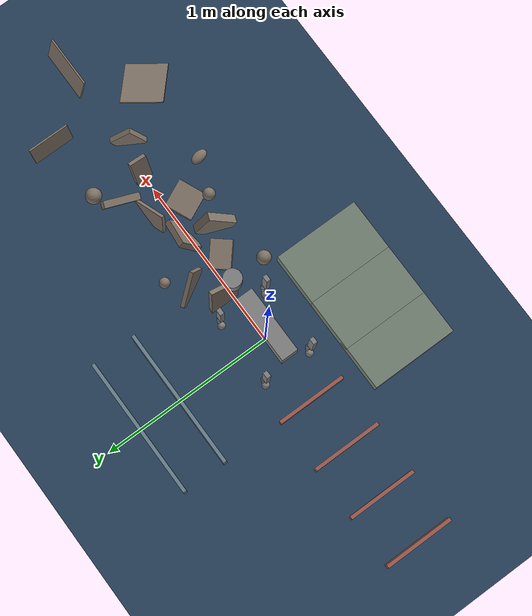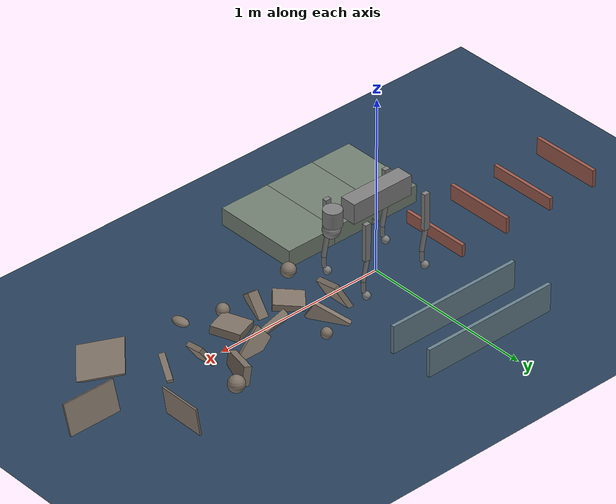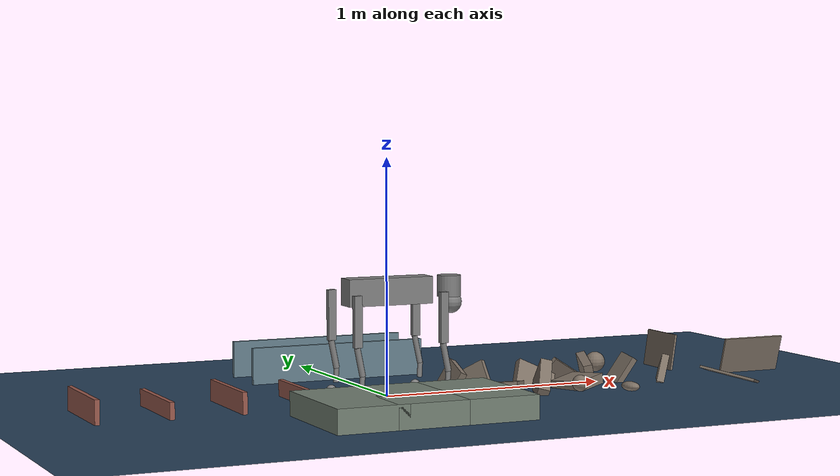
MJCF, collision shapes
<mujoco model="go2 rough terrain">
  <include file="go2.xml"/>

  <statistic center="0.5 0 0.1" extent="2"/>

  <visual>
    <headlight diffuse="0.6 0.6 0.6" ambient="0.3 0.3 0.3" specular="0 0 0"/>
    <rgba haze="0.15 0.25 0.35 1"/>
    <global azimuth="-130" elevation="-20"/>
  </visual>

  <asset>
    <texture type="skybox" builtin="gradient" rgb1="0.3 0.5 0.7" rgb2="0 0 0" width="512" height="3072"/>
    <texture type="2d" name="groundplane" builtin="checker" mark="edge" rgb1="0.2 0.3 0.4" rgb2="0.1 0.2 0.3"
      markrgb="0.8 0.8 0.8" width="300" height="300"/>
    <material name="groundplane" texture="groundplane" texuniform="true" texrepeat="5 5" reflectance="0.2"/>
    <material name="rock" rgba="0.50 0.45 0.40 1" reflectance="0.05"/>
    <material name="obstacle" rgba="0.60 0.35 0.30 1" reflectance="0.1"/>
    <material name="wall" rgba="0.40 0.50 0.55 1" reflectance="0.1"/>
    <material name="gap_plat" rgba="0.45 0.50 0.45 1" reflectance="0.1"/>
  </asset>

  <worldbody>
    <light pos="2 0 3" dir="0 0 -1" directional="true"/>
    <geom name="floor" size="0 0 0.05" type="plane" material="groundplane"/>

    <!-- ═══ Random bumps (uneven terrain zone) ═══ -->
    <!-- Scattered low boxes with slight tilts to simulate rough ground -->
    <geom type="box" size="0.08 0.10 0.015" pos="0.30  0.05 0.015" euler="0 2 5"   material="rock"/>
    <geom type="box" size="0.06 0.08 0.020" pos="0.50 -0.08 0.020" euler="3 0 -4"  material="rock"/>
    <geom type="box" size="0.10 0.06 0.012" pos="0.45  0.15 0.012" euler="-2 1 3"  material="rock"/>
    <geom type="box" size="0.07 0.09 0.018" pos="0.70  0.02 0.018" euler="1 -3 2"  material="rock"/>
    <geom type="box" size="0.09 0.07 0.025" pos="0.65 -0.15 0.025" euler="-1 2 -3" material="rock"/>
    <geom type="box" size="0.05 0.12 0.010" pos="0.90  0.10 0.010" euler="2 0 1"   material="rock"/>
    <geom type="box" size="0.08 0.08 0.022" pos="0.85 -0.10 0.022" euler="0 3 -2"  material="rock"/>
    <geom type="box" size="0.11 0.05 0.014" pos="1.10  0.00 0.014" euler="-3 1 0"  material="rock"/>
    <geom type="box" size="0.06 0.10 0.020" pos="1.05  0.18 0.020" euler="1 -2 4"  material="rock"/>
    <geom type="box" size="0.07 0.07 0.016" pos="1.30 -0.05 0.016" euler="2 1 -1"  material="rock"/>

    <!-- ═══ Hurdles (small walls to step over) ═══ -->
    <geom type="box" size="0.01 0.20 0.035" pos="-0.40  0.00 0.035" material="obstacle"/>
    <geom type="box" size="0.01 0.20 0.045" pos="-0.70  0.00 0.045" material="obstacle"/>
    <geom type="box" size="0.01 0.20 0.035" pos="-1.00  0.00 0.035" material="obstacle"/>
    <geom type="box" size="0.01 0.20 0.050" pos="-1.30  0.00 0.050" material="obstacle"/>

    <!-- ═══ Narrow corridor ═══ -->
    <!-- Two parallel walls, gap ~0.25m (Go2 width ~0.19m) -->
    <geom type="box" size="0.40 0.01 0.08" pos="0.00  0.55 0.08" material="wall"/>
    <geom type="box" size="0.40 0.01 0.08" pos="0.00  0.80 0.08" material="wall"/>

    <!-- ═══ Gap crossing (two platforms with space between) ═══ -->
    <geom type="box" size="0.15 0.25 0.05" pos="-0.40 -0.55 0.05" material="gap_plat"/>
    <geom type="box" size="0.15 0.25 0.05" pos="-0.15 -0.55 0.05" material="gap_plat"/>
    <!-- Gap of ~0.10m between platforms -->
    <geom type="box" size="0.15 0.25 0.05" pos="0.15  -0.55 0.05" material="gap_plat"/>

    <!-- ═══ Tilted platforms ═══ -->
    <geom type="box" size="0.12 0.12 0.005" pos="1.50 0.30 0.04" euler="0 8 0"  material="rock"/>
    <geom type="box" size="0.12 0.12 0.005" pos="1.50 -0.30 0.04" euler="0 -6 15" material="rock"/>
    <geom type="box" size="0.15 0.10 0.005" pos="1.80 0.00 0.06" euler="5 0 0"  material="rock"/>

    <!-- ═══ Random large stones ═══ -->
    <geom type="sphere" size="0.04" pos="0.35 -0.25 0.04" material="rock"/>
    <geom type="sphere" size="0.03" pos="0.55  0.25 0.03" material="rock"/>
    <geom type="sphere" size="0.035" pos="0.80 -0.22 0.035" material="rock"/>
    <geom type="sphere" size="0.045" pos="1.15  0.28 0.045" material="rock"/>
    <geom type="ellipsoid" size="0.05 0.03 0.02" pos="1.00 -0.30 0.02" euler="0 0 30" material="rock"/>
  </worldbody>
</mujoco>

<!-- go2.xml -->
<mujoco model="go2">
  <compiler angle="radian" meshdir="assets" autolimits="true"/>

  <option timestep="0.005" solver="PGS" gravity="0 0 -9.81"/>

  <default>
    <default class="go2">
      <geom friction="0.6" margin="0.001" condim="1"/>
      <joint axis="0 1 0" damping="0.1" armature="0.01" frictionloss="0.2"/>
      <motor ctrlrange="-23.7 23.7"/>
      <default class="abduction">
        <joint axis="1 0 0" range="-1.0472 1.0472"/>
      </default>
      <default class="hip">
        <default class="front_hip">
          <joint range="-1.5708 3.4907"/>
        </default>
        <default class="back_hip">
          <joint range="-0.5236 4.5379"/>
        </default>
      </default>
      <default class="knee">
        <joint range="-2.7227 -0.83776"/>
        <motor ctrlrange="-45.43 45.43"/>
      </default>
      <default class="visual">
        <geom type="mesh" contype="0" conaffinity="0" group="2"/>
      </default>
      <default class="collision">
        <geom group="3"/>
        <default class="foot">
          <geom size="0.022" pos="-0.002 0 -0.213" priority="1" solimp="0.015 1 0.022" condim="6"
            friction="2.0 0.005 0.0001"/>
        </default>
      </default>
    </default>
  </default>

  <asset>
    <material name="metal" rgba=".9 .95 .95 1"/>
    <material name="black" rgba="0 0 0 1"/>
    <material name="white" rgba="1 1 1 1"/>
    <material name="gray" rgba="0.671705 0.692426 0.774270 1"/>

    <mesh file="base_0.obj"/>
    <mesh file="base_1.obj"/>
    <mesh file="base_2.obj"/>
    <mesh file="base_3.obj"/>
    <mesh file="base_4.obj"/>
    <mesh file="hip_0.obj"/>
    <mesh file="hip_1.obj"/>
    <mesh file="thigh_0.obj"/>
    <mesh file="thigh_1.obj"/>
    <mesh file="thigh_mirror_0.obj"/>
    <mesh file="thigh_mirror_1.obj"/>
    <mesh file="calf_0.obj"/>
    <mesh file="calf_1.obj"/>
    <mesh file="calf_mirror_0.obj"/>
    <mesh file="calf_mirror_1.obj"/>
    <mesh file="foot.obj"/>

    <texture type="skybox" builtin="gradient" rgb1="0.3 0.5 0.7" rgb2="0 0 0" width="512" height="3072"/>
    <texture name="grid" type="2d" builtin="checker" width="512" height="512" rgb1=".1 .2 .3" rgb2=".2 .3 .4"/>
    <material name="groundplane" texture="grid" texuniform="true" texrepeat="1 1" reflectance="0.2"/>
  </asset>

  <worldbody>
    <light pos="0 0 1.5" dir="0 0 -1" directional="true"/>
    <geom name="floor" size="0 0 0.05" type="plane" material="groundplane" friction="2.0 0.005 0.0001"/>

    <body name="base" pos="0 0 0.445" childclass="go2">
      <inertial pos="0.021112 0 -0.005366" quat="-0.000543471 0.713435 -0.00173769 0.700719" mass="6.921"
        diaginertia="0.107027 0.0980771 0.0244531"/>
      <freejoint name="floating_base_joint"/>
      <geom mesh="base_0" material="black" class="visual"/>
      <geom mesh="base_1" material="black" class="visual"/>
      <geom mesh="base_2" material="black" class="visual"/>
      <geom mesh="base_3" material="white" class="visual"/>
      <geom mesh="base_4" material="gray" class="visual"/>
      <geom size="0.1881 0.04675 0.057" type="box" class="collision"/>
      <geom size="0.05 0.045" pos="0.285 0 0.01" type="cylinder" class="collision"/>
      <geom size="0.047" pos="0.293 0 -0.06" class="collision"/>
      <site name="imu" pos="-0.02557 0 0.04232"/>
      <body name="FL_hip" pos="0.1934 0.0465 0">
        <inertial pos="-0.0054 0.00194 -0.000105" quat="0.497014 0.499245 0.505462 0.498237" mass="0.678"
          diaginertia="0.00088403 0.000596003 0.000479967"/>
        <joint name="FL_hip_joint" class="abduction"/>
        <geom mesh="hip_0" material="metal" class="visual"/>
        <geom mesh="hip_1" material="gray" class="visual"/>
        <body name="FL_thigh" pos="0 0.0955 0">
          <inertial pos="-0.00374 -0.0223 -0.0327" quat="0.829533 0.0847635 -0.0200632 0.551623" mass="1.152"
            diaginertia="0.00594973 0.00584149 0.000878787"/>
          <joint name="FL_thigh_joint" class="front_hip"/>
          <geom mesh="thigh_0" material="metal" class="visual"/>
          <geom mesh="thigh_1" material="gray" class="visual"/>
          <geom size="0.1065 0.01225 0.017" pos="0 0 -0.1065" quat="0.707107 0 0.707107 0" type="box" class="collision"/>
          <body name="FL_calf" pos="0 0 -0.213">
            <inertial pos="0.00629595 -0.000622121 -0.141417" quat="0.710672 0.00154099 -0.00450087 0.703508"
              mass="0.241352" diaginertia="0.0014901 0.00146356 5.31397e-05"/>
            <joint name="FL_calf_joint" class="knee"/>
            <geom mesh="calf_0" material="gray" class="visual"/>
            <geom mesh="calf_1" material="black" class="visual"/>
            <geom size="0.012 0.06" pos="0.008 0 -0.06" quat="0.994493 0 -0.104807 0" type="cylinder" class="collision"/>
            <geom size="0.011 0.0325" pos="0.02 0 -0.148" quat="0.999688 0 0.0249974 0" type="cylinder" class="collision"/>
            <geom pos="0 0 -0.213" mesh="foot" class="visual" material="black"/>
            <geom name="FL" class="foot"/>
          </body>
        </body>
      </body>
      <body name="FR_hip" pos="0.1934 -0.0465 0">
        <inertial pos="-0.0054 -0.00194 -0.000105" quat="0.498237 0.505462 0.499245 0.497014" mass="0.678"
          diaginertia="0.00088403 0.000596003 0.000479967"/>
        <joint name="FR_hip_joint" class="abduction"/>
        <geom mesh="hip_0" material="metal" class="visual" quat="4.63268e-05 1 0 0"/>
        <geom mesh="hip_1" material="gray" class="visual" quat="4.63268e-05 1 0 0"/>
        <body name="FR_thigh" pos="0 -0.0955 0">
          <inertial pos="-0.00374 0.0223 -0.0327" quat="0.551623 -0.0200632 0.0847635 0.829533" mass="1.152"
            diaginertia="0.00594973 0.00584149 0.000878787"/>
          <joint name="FR_thigh_joint" class="front_hip"/>
          <geom mesh="thigh_mirror_0" material="metal" class="visual"/>
          <geom mesh="thigh_mirror_1" material="gray" class="visual"/>
          <geom size="0.1065 0.01225 0.017" pos="0 0 -0.1065" quat="0.707107 0 0.707107 0" type="box" class="collision"/>
          <body name="FR_calf" pos="0 0 -0.213">
            <inertial pos="0.00629595 0.000622121 -0.141417" quat="0.703508 -0.00450087 0.00154099 0.710672"
              mass="0.241352" diaginertia="0.0014901 0.00146356 5.31397e-05"/>
            <joint name="FR_calf_joint" class="knee"/>
            <geom mesh="calf_mirror_0" material="gray" class="visual"/>
            <geom mesh="calf_mirror_1" material="black" class="visual"/>
            <geom size="0.013 0.06" pos="0.01 0 -0.06" quat="0.995004 0 -0.0998334 0" type="cylinder" class="collision"/>
            <geom size="0.011 0.0325" pos="0.02 0 -0.148" quat="0.999688 0 0.0249974 0" type="cylinder" class="collision"/>
            <geom pos="0 0 -0.213" mesh="foot" class="visual" material="black"/>
            <geom name="FR" class="foot"/>
          </body>
        </body>
      </body>
      <body name="RL_hip" pos="-0.1934 0.0465 0">
        <inertial pos="0.0054 0.00194 -0.000105" quat="0.505462 0.498237 0.497014 0.499245" mass="0.678"
          diaginertia="0.00088403 0.000596003 0.000479967"/>
        <joint name="RL_hip_joint" class="abduction"/>
        <geom mesh="hip_0" material="metal" class="visual" quat="4.63268e-05 0 1 0"/>
        <geom mesh="hip_1" material="gray" class="visual" quat="4.63268e-05 0 1 0"/>
        <body name="RL_thigh" pos="0 0.0955 0">
          <inertial pos="-0.00374 -0.0223 -0.0327" quat="0.829533 0.0847635 -0.0200632 0.551623" mass="1.152"
            diaginertia="0.00594973 0.00584149 0.000878787"/>
          <joint name="RL_thigh_joint" class="back_hip"/>
          <geom mesh="thigh_0" material="metal" class="visual"/>
          <geom mesh="thigh_1" material="gray" class="visual"/>
          <geom size="0.1065 0.01225 0.017" pos="0 0 -0.1065" quat="0.707107 0 0.707107 0" type="box" class="collision"/>
          <body name="RL_calf" pos="0 0 -0.213">
            <inertial pos="0.00629595 -0.000622121 -0.141417" quat="0.710672 0.00154099 -0.00450087 0.703508"
              mass="0.241352" diaginertia="0.0014901 0.00146356 5.31397e-05"/>
            <joint name="RL_calf_joint" class="knee"/>
            <geom mesh="calf_0" material="gray" class="visual"/>
            <geom mesh="calf_1" material="black" class="visual"/>
            <geom size="0.013 0.06" pos="0.01 0 -0.06" quat="0.995004 0 -0.0998334 0" type="cylinder" class="collision"/>
            <geom size="0.011 0.0325" pos="0.02 0 -0.148" quat="0.999688 0 0.0249974 0" type="cylinder" class="collision"/>
            <geom pos="0 0 -0.213" mesh="foot" class="visual" material="black"/>
            <geom name="RL" class="foot"/>
          </body>
        </body>
      </body>
      <body name="RR_hip" pos="-0.1934 -0.0465 0">
        <inertial pos="0.0054 -0.00194 -0.000105" quat="0.499245 0.497014 0.498237 0.505462" mass="0.678"
          diaginertia="0.00088403 0.000596003 0.000479967"/>
        <joint name="RR_hip_joint" class="abduction"/>
        <geom mesh="hip_0" material="metal" class="visual" quat="2.14617e-09 4.63268e-05 4.63268e-05 -1"/>
        <geom mesh="hip_1" material="gray" class="visual" quat="2.14617e-09 4.63268e-05 4.63268e-05 -1"/>
        <body name="RR_thigh" pos="0 -0.0955 0">
          <inertial pos="-0.00374 0.0223 -0.0327" quat="0.551623 -0.0200632 0.0847635 0.829533" mass="1.152"
            diaginertia="0.00594973 0.00584149 0.000878787"/>
          <joint name="RR_thigh_joint" class="back_hip"/>
          <geom mesh="thigh_mirror_0" material="metal" class="visual"/>
          <geom mesh="thigh_mirror_1" material="gray" class="visual"/>
          <geom size="0.1065 0.01225 0.017" pos="0 0 -0.1065" quat="0.707107 0 0.707107 0" type="box" class="collision"/>
          <body name="RR_calf" pos="0 0 -0.213">
            <inertial pos="0.00629595 0.000622121 -0.141417" quat="0.703508 -0.00450087 0.00154099 0.710672"
              mass="0.241352" diaginertia="0.0014901 0.00146356 5.31397e-05"/>
            <joint name="RR_calf_joint" class="knee"/>
            <geom mesh="calf_mirror_0" material="gray" class="visual"/>
            <geom mesh="calf_mirror_1" material="black" class="visual"/>
            <geom size="0.013 0.06" pos="0.01 0 -0.06" quat="0.995004 0 -0.0998334 0" type="cylinder" class="collision"/>
            <geom size="0.011 0.0325" pos="0.02 0 -0.148" quat="0.999688 0 0.0249974 0" type="cylinder" class="collision"/>
            <geom pos="0 0 -0.213" mesh="foot" class="visual" material="black"/>
            <geom name="RR" class="foot"/>
          </body>
        </body>
      </body>
    </body>
  </worldbody>

  <actuator>
    <motor class="abduction" name="FL_hip" joint="FL_hip_joint"/>
    <motor class="hip" name="FL_thigh" joint="FL_thigh_joint"/>
    <motor class="knee" name="FL_calf" joint="FL_calf_joint"/>
    <motor class="abduction" name="FR_hip" joint="FR_hip_joint"/>
    <motor class="hip" name="FR_thigh" joint="FR_thigh_joint"/>
    <motor class="knee" name="FR_calf" joint="FR_calf_joint"/>
    <motor class="abduction" name="RL_hip" joint="RL_hip_joint"/>
    <motor class="hip" name="RL_thigh" joint="RL_thigh_joint"/>
    <motor class="knee" name="RL_calf" joint="RL_calf_joint"/>
    <motor class="abduction" name="RR_hip" joint="RR_hip_joint"/>
    <motor class="hip" name="RR_thigh" joint="RR_thigh_joint"/>
    <motor class="knee" name="RR_calf" joint="RR_calf_joint"/>
  </actuator>

  <keyframe>
    <key name="home" qpos="0 0 0.27 1 0 0 0 0 0.9 -1.8 0 0.9 -1.8 0 0.9 -1.8 0 0.9 -1.8"
      ctrl="0 0.9 -1.8 0 0.9 -1.8 0 0.9 -1.8 0 0.9 -1.8"/>
  </keyframe>
</mujoco>
